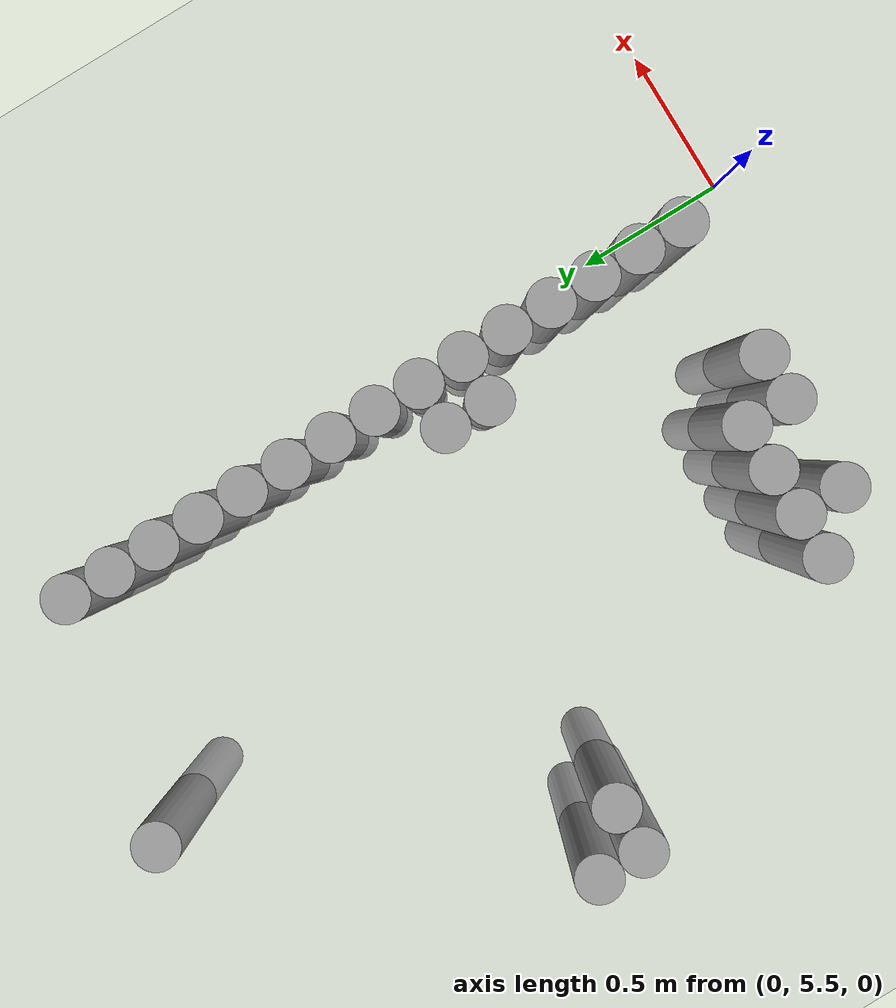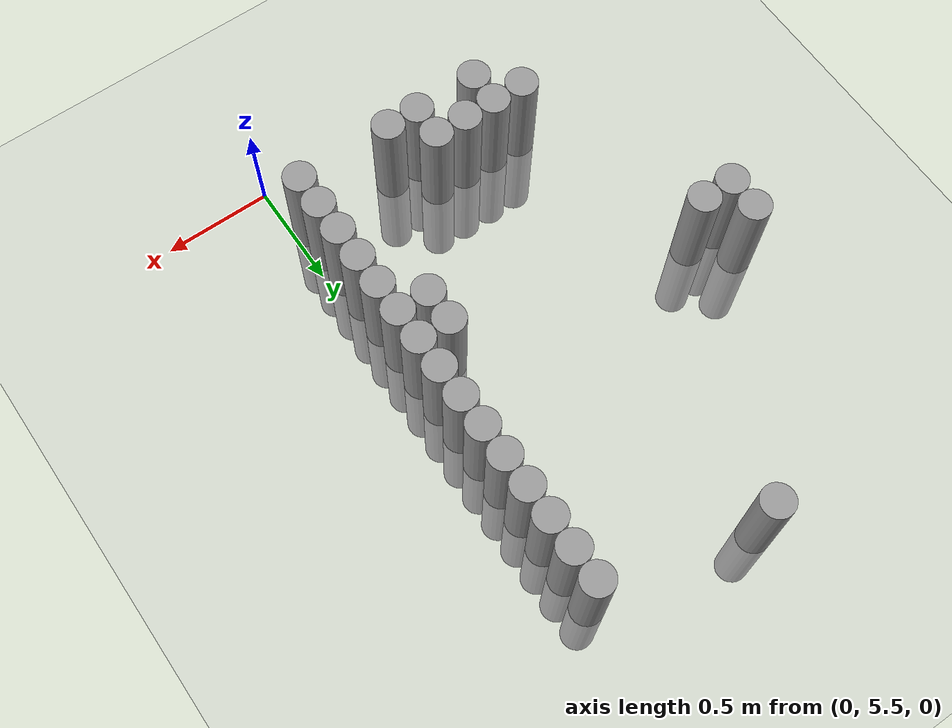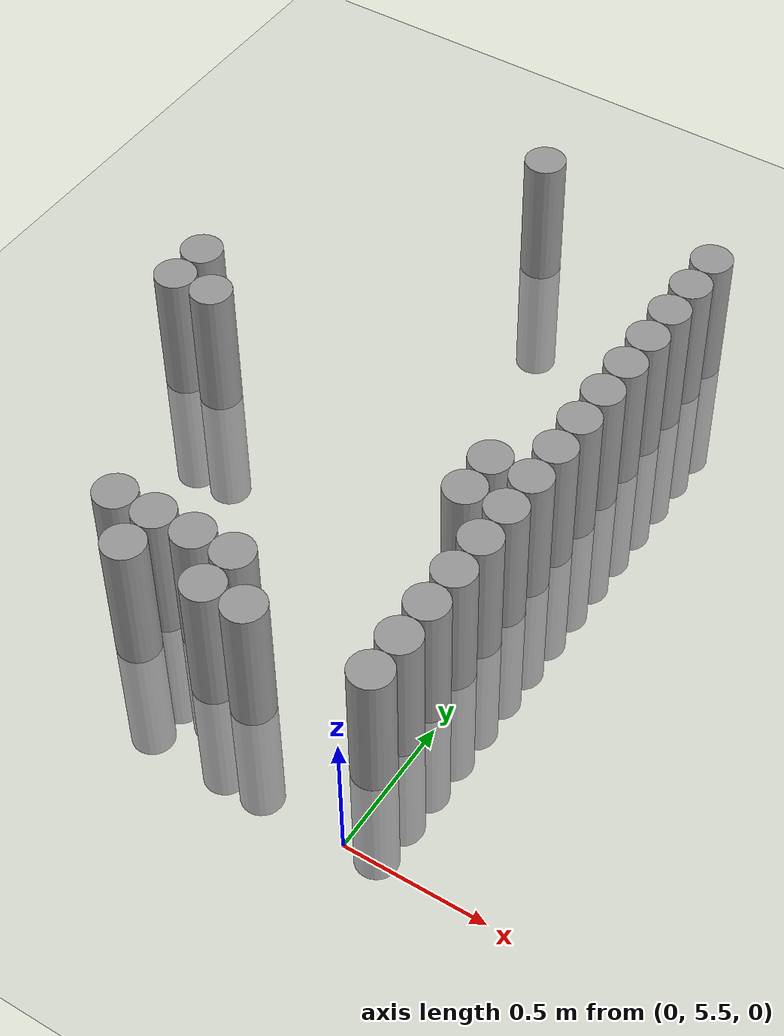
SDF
<sdf version="1.6">
 <world name="default">
  <model name="ground_plane">
   <static>1</static>
   <static>1</static>
   <link name="link">
    <collision name="collision">
     <geometry><plane><normal>0 0 1</normal><size>100 100</size></plane></geometry>
     <surface><friction><ode><mu>100</mu><mu2>50</mu2></ode></friction></surface>
    </collision>
    <visual name="visual">
     <cast_shadows>0</cast_shadows>
     <geometry><plane><normal>0 0 1</normal><size>100 100</size></plane></geometry>
     <material>
      <script><uri>file://media/materials/scripts/gazebo.material</uri><name>Gazebo/Grey</name></script>
     </material>
    </visual>
   </link>
  </model>
  <model name="unit_cylinder_159">
   <static>1</static>
   <pose>-1.575000 6.825000 0.000000 0.000000 0.000000 0.000000</pose>
   <link name="link">
    <inertial>
     <mass>1</mass>
     <inertia><ixx>0.145833</ixx><ixy>0</ixy><ixz>0</ixz><iyy>0.145833</iyy><iyz>0</iyz><izz>0.125</izz></inertia>
    </inertial>
    <collision name="collision">
     <geometry><cylinder><radius>0.075000</radius><length>1</length></cylinder></geometry>
    </collision>
    <visual name="visual">
     <geometry><cylinder><radius>0.075000</radius><length>1</length></cylinder></geometry>
     <material>
      <script><name>Gazebo/Grey</name><uri>file://media/materials/scripts/gazebo.material</uri></script>
     </material>
    </visual>
   </link>
  </model>
  <model name="unit_cylinder_160">
   <static>1</static>
   <pose>-1.575000 6.975000 0.000000 0.000000 0.000000 0.000000</pose>
   <link name="link">
    <inertial>
     <mass>1</mass>
     <inertia><ixx>0.145833</ixx><ixy>0</ixy><ixz>0</ixz><iyy>0.145833</iyy><iyz>0</iyz><izz>0.125</izz></inertia>
    </inertial>
    <collision name="collision">
     <geometry><cylinder><radius>0.075000</radius><length>1</length></cylinder></geometry>
    </collision>
    <visual name="visual">
     <geometry><cylinder><radius>0.075000</radius><length>1</length></cylinder></geometry>
     <material>
      <script><name>Gazebo/Grey</name><uri>file://media/materials/scripts/gazebo.material</uri></script>
     </material>
    </visual>
   </link>
  </model>
  <model name="unit_cylinder_161">
   <static>1</static>
   <pose>-1.425000 6.825000 0.000000 0.000000 0.000000 0.000000</pose>
   <link name="link">
    <inertial>
     <mass>1</mass>
     <inertia><ixx>0.145833</ixx><ixy>0</ixy><ixz>0</ixz><iyy>0.145833</iyy><iyz>0</iyz><izz>0.125</izz></inertia>
    </inertial>
    <collision name="collision">
     <geometry><cylinder><radius>0.075000</radius><length>1</length></cylinder></geometry>
    </collision>
    <visual name="visual">
     <geometry><cylinder><radius>0.075000</radius><length>1</length></cylinder></geometry>
     <material>
      <script><name>Gazebo/Grey</name><uri>file://media/materials/scripts/gazebo.material</uri></script>
     </material>
    </visual>
   </link>
  </model>
  <model name="unit_cylinder_170">
   <static>1</static>
   <pose>-1.125000 5.925000 0.000000 0.000000 0.000000 0.000000</pose>
   <link name="link">
    <inertial>
     <mass>1</mass>
     <inertia><ixx>0.145833</ixx><ixy>0</ixy><ixz>0</ixz><iyy>0.145833</iyy><iyz>0</iyz><izz>0.125</izz></inertia>
    </inertial>
    <collision name="collision">
     <geometry><cylinder><radius>0.075000</radius><length>1</length></cylinder></geometry>
    </collision>
    <visual name="visual">
     <geometry><cylinder><radius>0.075000</radius><length>1</length></cylinder></geometry>
     <material>
      <script><name>Gazebo/Grey</name><uri>file://media/materials/scripts/gazebo.material</uri></script>
     </material>
    </visual>
   </link>
  </model>
  <model name="unit_cylinder_174">
   <static>1</static>
   <pose>-0.975000 5.775000 0.000000 0.000000 0.000000 0.000000</pose>
   <link name="link">
    <inertial>
     <mass>1</mass>
     <inertia><ixx>0.145833</ixx><ixy>0</ixy><ixz>0</ixz><iyy>0.145833</iyy><iyz>0</iyz><izz>0.125</izz></inertia>
    </inertial>
    <collision name="collision">
     <geometry><cylinder><radius>0.075000</radius><length>1</length></cylinder></geometry>
    </collision>
    <visual name="visual">
     <geometry><cylinder><radius>0.075000</radius><length>1</length></cylinder></geometry>
     <material>
      <script><name>Gazebo/Grey</name><uri>file://media/materials/scripts/gazebo.material</uri></script>
     </material>
    </visual>
   </link>
  </model>
  <model name="unit_cylinder_175">
   <static>1</static>
   <pose>-0.975000 5.925000 0.000000 0.000000 0.000000 0.000000</pose>
   <link name="link">
    <inertial>
     <mass>1</mass>
     <inertia><ixx>0.145833</ixx><ixy>0</ixy><ixz>0</ixz><iyy>0.145833</iyy><iyz>0</iyz><izz>0.125</izz></inertia>
    </inertial>
    <collision name="collision">
     <geometry><cylinder><radius>0.075000</radius><length>1</length></cylinder></geometry>
    </collision>
    <visual name="visual">
     <geometry><cylinder><radius>0.075000</radius><length>1</length></cylinder></geometry>
     <material>
      <script><name>Gazebo/Grey</name><uri>file://media/materials/scripts/gazebo.material</uri></script>
     </material>
    </visual>
   </link>
  </model>
  <model name="unit_cylinder_178">
   <static>1</static>
   <pose>-0.825000 5.925000 0.000000 0.000000 0.000000 0.000000</pose>
   <link name="link">
    <inertial>
     <mass>1</mass>
     <inertia><ixx>0.145833</ixx><ixy>0</ixy><ixz>0</ixz><iyy>0.145833</iyy><iyz>0</iyz><izz>0.125</izz></inertia>
    </inertial>
    <collision name="collision">
     <geometry><cylinder><radius>0.075000</radius><length>1</length></cylinder></geometry>
    </collision>
    <visual name="visual">
     <geometry><cylinder><radius>0.075000</radius><length>1</length></cylinder></geometry>
     <material>
      <script><name>Gazebo/Grey</name><uri>file://media/materials/scripts/gazebo.material</uri></script>
     </material>
    </visual>
   </link>
  </model>
  <model name="unit_cylinder_179">
   <static>1</static>
   <pose>-0.825000 8.025000 0.000000 0.000000 0.000000 0.000000</pose>
   <link name="link">
    <inertial>
     <mass>1</mass>
     <inertia><ixx>0.145833</ixx><ixy>0</ixy><ixz>0</ixz><iyy>0.145833</iyy><iyz>0</iyz><izz>0.125</izz></inertia>
    </inertial>
    <collision name="collision">
     <geometry><cylinder><radius>0.075000</radius><length>1</length></cylinder></geometry>
    </collision>
    <visual name="visual">
     <geometry><cylinder><radius>0.075000</radius><length>1</length></cylinder></geometry>
     <material>
      <script><name>Gazebo/Grey</name><uri>file://media/materials/scripts/gazebo.material</uri></script>
     </material>
    </visual>
   </link>
  </model>
  <model name="unit_cylinder_181">
   <static>1</static>
   <pose>-0.675000 5.775000 0.000000 0.000000 0.000000 0.000000</pose>
   <link name="link">
    <inertial>
     <mass>1</mass>
     <inertia><ixx>0.145833</ixx><ixy>0</ixy><ixz>0</ixz><iyy>0.145833</iyy><iyz>0</iyz><izz>0.125</izz></inertia>
    </inertial>
    <collision name="collision">
     <geometry><cylinder><radius>0.075000</radius><length>1</length></cylinder></geometry>
    </collision>
    <visual name="visual">
     <geometry><cylinder><radius>0.075000</radius><length>1</length></cylinder></geometry>
     <material>
      <script><name>Gazebo/Grey</name><uri>file://media/materials/scripts/gazebo.material</uri></script>
     </material>
    </visual>
   </link>
  </model>
  <model name="unit_cylinder_182">
   <static>1</static>
   <pose>-0.675000 5.925000 0.000000 0.000000 0.000000 0.000000</pose>
   <link name="link">
    <inertial>
     <mass>1</mass>
     <inertia><ixx>0.145833</ixx><ixy>0</ixy><ixz>0</ixz><iyy>0.145833</iyy><iyz>0</iyz><izz>0.125</izz></inertia>
    </inertial>
    <collision name="collision">
     <geometry><cylinder><radius>0.075000</radius><length>1</length></cylinder></geometry>
    </collision>
    <visual name="visual">
     <geometry><cylinder><radius>0.075000</radius><length>1</length></cylinder></geometry>
     <material>
      <script><name>Gazebo/Grey</name><uri>file://media/materials/scripts/gazebo.material</uri></script>
     </material>
    </visual>
   </link>
  </model>
  <model name="unit_cylinder_185">
   <static>1</static>
   <pose>-0.525000 5.775000 0.000000 0.000000 0.000000 0.000000</pose>
   <link name="link">
    <inertial>
     <mass>1</mass>
     <inertia><ixx>0.145833</ixx><ixy>0</ixy><ixz>0</ixz><iyy>0.145833</iyy><iyz>0</iyz><izz>0.125</izz></inertia>
    </inertial>
    <collision name="collision">
     <geometry><cylinder><radius>0.075000</radius><length>1</length></cylinder></geometry>
    </collision>
    <visual name="visual">
     <geometry><cylinder><radius>0.075000</radius><length>1</length></cylinder></geometry>
     <material>
      <script><name>Gazebo/Grey</name><uri>file://media/materials/scripts/gazebo.material</uri></script>
     </material>
    </visual>
   </link>
  </model>
  <model name="unit_cylinder_188">
   <static>1</static>
   <pose>-0.225000 6.525000 0.000000 0.000000 0.000000 0.000000</pose>
   <link name="link">
    <inertial>
     <mass>1</mass>
     <inertia><ixx>0.145833</ixx><ixy>0</ixy><ixz>0</ixz><iyy>0.145833</iyy><iyz>0</iyz><izz>0.125</izz></inertia>
    </inertial>
    <collision name="collision">
     <geometry><cylinder><radius>0.075000</radius><length>1</length></cylinder></geometry>
    </collision>
    <visual name="visual">
     <geometry><cylinder><radius>0.075000</radius><length>1</length></cylinder></geometry>
     <material>
      <script><name>Gazebo/Grey</name><uri>file://media/materials/scripts/gazebo.material</uri></script>
     </material>
    </visual>
   </link>
  </model>
  <model name="unit_cylinder_189">
   <static>1</static>
   <pose>-0.225000 6.675000 0.000000 0.000000 0.000000 0.000000</pose>
   <link name="link">
    <inertial>
     <mass>1</mass>
     <inertia><ixx>0.145833</ixx><ixy>0</ixy><ixz>0</ixz><iyy>0.145833</iyy><iyz>0</iyz><izz>0.125</izz></inertia>
    </inertial>
    <collision name="collision">
     <geometry><cylinder><radius>0.075000</radius><length>1</length></cylinder></geometry>
    </collision>
    <visual name="visual">
     <geometry><cylinder><radius>0.075000</radius><length>1</length></cylinder></geometry>
     <material>
      <script><name>Gazebo/Grey</name><uri>file://media/materials/scripts/gazebo.material</uri></script>
     </material>
    </visual>
   </link>
  </model>
  <model name="unit_cylinder_198">
   <static>1</static>
   <pose>-0.075000 5.775000 0.000000 0.000000 0.000000 0.000000</pose>
   <link name="link">
    <inertial>
     <mass>1</mass>
     <inertia><ixx>0.145833</ixx><ixy>0</ixy><ixz>0</ixz><iyy>0.145833</iyy><iyz>0</iyz><izz>0.125</izz></inertia>
    </inertial>
    <collision name="collision">
     <geometry><cylinder><radius>0.075000</radius><length>1</length></cylinder></geometry>
    </collision>
    <visual name="visual">
     <geometry><cylinder><radius>0.075000</radius><length>1</length></cylinder></geometry>
     <material>
      <script><name>Gazebo/Grey</name><uri>file://media/materials/scripts/gazebo.material</uri></script>
     </material>
    </visual>
   </link>
  </model>
  <model name="unit_cylinder_199">
   <static>1</static>
   <pose>-0.075000 5.925000 0.000000 0.000000 0.000000 0.000000</pose>
   <link name="link">
    <inertial>
     <mass>1</mass>
     <inertia><ixx>0.145833</ixx><ixy>0</ixy><ixz>0</ixz><iyy>0.145833</iyy><iyz>0</iyz><izz>0.125</izz></inertia>
    </inertial>
    <collision name="collision">
     <geometry><cylinder><radius>0.075000</radius><length>1</length></cylinder></geometry>
    </collision>
    <visual name="visual">
     <geometry><cylinder><radius>0.075000</radius><length>1</length></cylinder></geometry>
     <material>
      <script><name>Gazebo/Grey</name><uri>file://media/materials/scripts/gazebo.material</uri></script>
     </material>
    </visual>
   </link>
  </model>
  <model name="unit_cylinder_200">
   <static>1</static>
   <pose>-0.075000 6.075000 0.000000 0.000000 0.000000 0.000000</pose>
   <link name="link">
    <inertial>
     <mass>1</mass>
     <inertia><ixx>0.145833</ixx><ixy>0</ixy><ixz>0</ixz><iyy>0.145833</iyy><iyz>0</iyz><izz>0.125</izz></inertia>
    </inertial>
    <collision name="collision">
     <geometry><cylinder><radius>0.075000</radius><length>1</length></cylinder></geometry>
    </collision>
    <visual name="visual">
     <geometry><cylinder><radius>0.075000</radius><length>1</length></cylinder></geometry>
     <material>
      <script><name>Gazebo/Grey</name><uri>file://media/materials/scripts/gazebo.material</uri></script>
     </material>
    </visual>
   </link>
  </model>
  <model name="unit_cylinder_201">
   <static>1</static>
   <pose>-0.075000 6.225000 0.000000 0.000000 0.000000 0.000000</pose>
   <link name="link">
    <inertial>
     <mass>1</mass>
     <inertia><ixx>0.145833</ixx><ixy>0</ixy><ixz>0</ixz><iyy>0.145833</iyy><iyz>0</iyz><izz>0.125</izz></inertia>
    </inertial>
    <collision name="collision">
     <geometry><cylinder><radius>0.075000</radius><length>1</length></cylinder></geometry>
    </collision>
    <visual name="visual">
     <geometry><cylinder><radius>0.075000</radius><length>1</length></cylinder></geometry>
     <material>
      <script><name>Gazebo/Grey</name><uri>file://media/materials/scripts/gazebo.material</uri></script>
     </material>
    </visual>
   </link>
  </model>
  <model name="unit_cylinder_202">
   <static>1</static>
   <pose>-0.075000 6.375000 0.000000 0.000000 0.000000 0.000000</pose>
   <link name="link">
    <inertial>
     <mass>1</mass>
     <inertia><ixx>0.145833</ixx><ixy>0</ixy><ixz>0</ixz><iyy>0.145833</iyy><iyz>0</iyz><izz>0.125</izz></inertia>
    </inertial>
    <collision name="collision">
     <geometry><cylinder><radius>0.075000</radius><length>1</length></cylinder></geometry>
    </collision>
    <visual name="visual">
     <geometry><cylinder><radius>0.075000</radius><length>1</length></cylinder></geometry>
     <material>
      <script><name>Gazebo/Grey</name><uri>file://media/materials/scripts/gazebo.material</uri></script>
     </material>
    </visual>
   </link>
  </model>
  <model name="unit_cylinder_203">
   <static>1</static>
   <pose>-0.075000 6.525000 0.000000 0.000000 0.000000 0.000000</pose>
   <link name="link">
    <inertial>
     <mass>1</mass>
     <inertia><ixx>0.145833</ixx><ixy>0</ixy><ixz>0</ixz><iyy>0.145833</iyy><iyz>0</iyz><izz>0.125</izz></inertia>
    </inertial>
    <collision name="collision">
     <geometry><cylinder><radius>0.075000</radius><length>1</length></cylinder></geometry>
    </collision>
    <visual name="visual">
     <geometry><cylinder><radius>0.075000</radius><length>1</length></cylinder></geometry>
     <material>
      <script><name>Gazebo/Grey</name><uri>file://media/materials/scripts/gazebo.material</uri></script>
     </material>
    </visual>
   </link>
  </model>
  <model name="unit_cylinder_204">
   <static>1</static>
   <pose>-0.075000 6.675000 0.000000 0.000000 0.000000 0.000000</pose>
   <link name="link">
    <inertial>
     <mass>1</mass>
     <inertia><ixx>0.145833</ixx><ixy>0</ixy><ixz>0</ixz><iyy>0.145833</iyy><iyz>0</iyz><izz>0.125</izz></inertia>
    </inertial>
    <collision name="collision">
     <geometry><cylinder><radius>0.075000</radius><length>1</length></cylinder></geometry>
    </collision>
    <visual name="visual">
     <geometry><cylinder><radius>0.075000</radius><length>1</length></cylinder></geometry>
     <material>
      <script><name>Gazebo/Grey</name><uri>file://media/materials/scripts/gazebo.material</uri></script>
     </material>
    </visual>
   </link>
  </model>
  <model name="unit_cylinder_205">
   <static>1</static>
   <pose>-0.075000 6.825000 0.000000 0.000000 0.000000 0.000000</pose>
   <link name="link">
    <inertial>
     <mass>1</mass>
     <inertia><ixx>0.145833</ixx><ixy>0</ixy><ixz>0</ixz><iyy>0.145833</iyy><iyz>0</iyz><izz>0.125</izz></inertia>
    </inertial>
    <collision name="collision">
     <geometry><cylinder><radius>0.075000</radius><length>1</length></cylinder></geometry>
    </collision>
    <visual name="visual">
     <geometry><cylinder><radius>0.075000</radius><length>1</length></cylinder></geometry>
     <material>
      <script><name>Gazebo/Grey</name><uri>file://media/materials/scripts/gazebo.material</uri></script>
     </material>
    </visual>
   </link>
  </model>
  <model name="unit_cylinder_206">
   <static>1</static>
   <pose>-0.075000 6.975000 0.000000 0.000000 0.000000 0.000000</pose>
   <link name="link">
    <inertial>
     <mass>1</mass>
     <inertia><ixx>0.145833</ixx><ixy>0</ixy><ixz>0</ixz><iyy>0.145833</iyy><iyz>0</iyz><izz>0.125</izz></inertia>
    </inertial>
    <collision name="collision">
     <geometry><cylinder><radius>0.075000</radius><length>1</length></cylinder></geometry>
    </collision>
    <visual name="visual">
     <geometry><cylinder><radius>0.075000</radius><length>1</length></cylinder></geometry>
     <material>
      <script><name>Gazebo/Grey</name><uri>file://media/materials/scripts/gazebo.material</uri></script>
     </material>
    </visual>
   </link>
  </model>
  <model name="unit_cylinder_207">
   <static>1</static>
   <pose>-0.075000 7.125000 0.000000 0.000000 0.000000 0.000000</pose>
   <link name="link">
    <inertial>
     <mass>1</mass>
     <inertia><ixx>0.145833</ixx><ixy>0</ixy><ixz>0</ixz><iyy>0.145833</iyy><iyz>0</iyz><izz>0.125</izz></inertia>
    </inertial>
    <collision name="collision">
     <geometry><cylinder><radius>0.075000</radius><length>1</length></cylinder></geometry>
    </collision>
    <visual name="visual">
     <geometry><cylinder><radius>0.075000</radius><length>1</length></cylinder></geometry>
     <material>
      <script><name>Gazebo/Grey</name><uri>file://media/materials/scripts/gazebo.material</uri></script>
     </material>
    </visual>
   </link>
  </model>
  <model name="unit_cylinder_208">
   <static>1</static>
   <pose>-0.075000 7.275000 0.000000 0.000000 0.000000 0.000000</pose>
   <link name="link">
    <inertial>
     <mass>1</mass>
     <inertia><ixx>0.145833</ixx><ixy>0</ixy><ixz>0</ixz><iyy>0.145833</iyy><iyz>0</iyz><izz>0.125</izz></inertia>
    </inertial>
    <collision name="collision">
     <geometry><cylinder><radius>0.075000</radius><length>1</length></cylinder></geometry>
    </collision>
    <visual name="visual">
     <geometry><cylinder><radius>0.075000</radius><length>1</length></cylinder></geometry>
     <material>
      <script><name>Gazebo/Grey</name><uri>file://media/materials/scripts/gazebo.material</uri></script>
     </material>
    </visual>
   </link>
  </model>
  <model name="unit_cylinder_209">
   <static>1</static>
   <pose>-0.075000 7.425000 0.000000 0.000000 0.000000 0.000000</pose>
   <link name="link">
    <inertial>
     <mass>1</mass>
     <inertia><ixx>0.145833</ixx><ixy>0</ixy><ixz>0</ixz><iyy>0.145833</iyy><iyz>0</iyz><izz>0.125</izz></inertia>
    </inertial>
    <collision name="collision">
     <geometry><cylinder><radius>0.075000</radius><length>1</length></cylinder></geometry>
    </collision>
    <visual name="visual">
     <geometry><cylinder><radius>0.075000</radius><length>1</length></cylinder></geometry>
     <material>
      <script><name>Gazebo/Grey</name><uri>file://media/materials/scripts/gazebo.material</uri></script>
     </material>
    </visual>
   </link>
  </model>
  <model name="unit_cylinder_210">
   <static>1</static>
   <pose>-0.075000 7.575000 0.000000 0.000000 0.000000 0.000000</pose>
   <link name="link">
    <inertial>
     <mass>1</mass>
     <inertia><ixx>0.145833</ixx><ixy>0</ixy><ixz>0</ixz><iyy>0.145833</iyy><iyz>0</iyz><izz>0.125</izz></inertia>
    </inertial>
    <collision name="collision">
     <geometry><cylinder><radius>0.075000</radius><length>1</length></cylinder></geometry>
    </collision>
    <visual name="visual">
     <geometry><cylinder><radius>0.075000</radius><length>1</length></cylinder></geometry>
     <material>
      <script><name>Gazebo/Grey</name><uri>file://media/materials/scripts/gazebo.material</uri></script>
     </material>
    </visual>
   </link>
  </model>
  <model name="unit_cylinder_211">
   <static>1</static>
   <pose>-0.075000 7.725000 0.000000 0.000000 0.000000 0.000000</pose>
   <link name="link">
    <inertial>
     <mass>1</mass>
     <inertia><ixx>0.145833</ixx><ixy>0</ixy><ixz>0</ixz><iyy>0.145833</iyy><iyz>0</iyz><izz>0.125</izz></inertia>
    </inertial>
    <collision name="collision">
     <geometry><cylinder><radius>0.075000</radius><length>1</length></cylinder></geometry>
    </collision>
    <visual name="visual">
     <geometry><cylinder><radius>0.075000</radius><length>1</length></cylinder></geometry>
     <material>
      <script><name>Gazebo/Grey</name><uri>file://media/materials/scripts/gazebo.material</uri></script>
     </material>
    </visual>
   </link>
  </model>
  <model name="unit_cylinder_212">
   <static>1</static>
   <pose>-0.075000 7.875000 0.000000 0.000000 0.000000 0.000000</pose>
   <link name="link">
    <inertial>
     <mass>1</mass>
     <inertia><ixx>0.145833</ixx><ixy>0</ixy><ixz>0</ixz><iyy>0.145833</iyy><iyz>0</iyz><izz>0.125</izz></inertia>
    </inertial>
    <collision name="collision">
     <geometry><cylinder><radius>0.075000</radius><length>1</length></cylinder></geometry>
    </collision>
    <visual name="visual">
     <geometry><cylinder><radius>0.075000</radius><length>1</length></cylinder></geometry>
     <material>
      <script><name>Gazebo/Grey</name><uri>file://media/materials/scripts/gazebo.material</uri></script>
     </material>
    </visual>
   </link>
  </model>
 </world>
</sdf>
